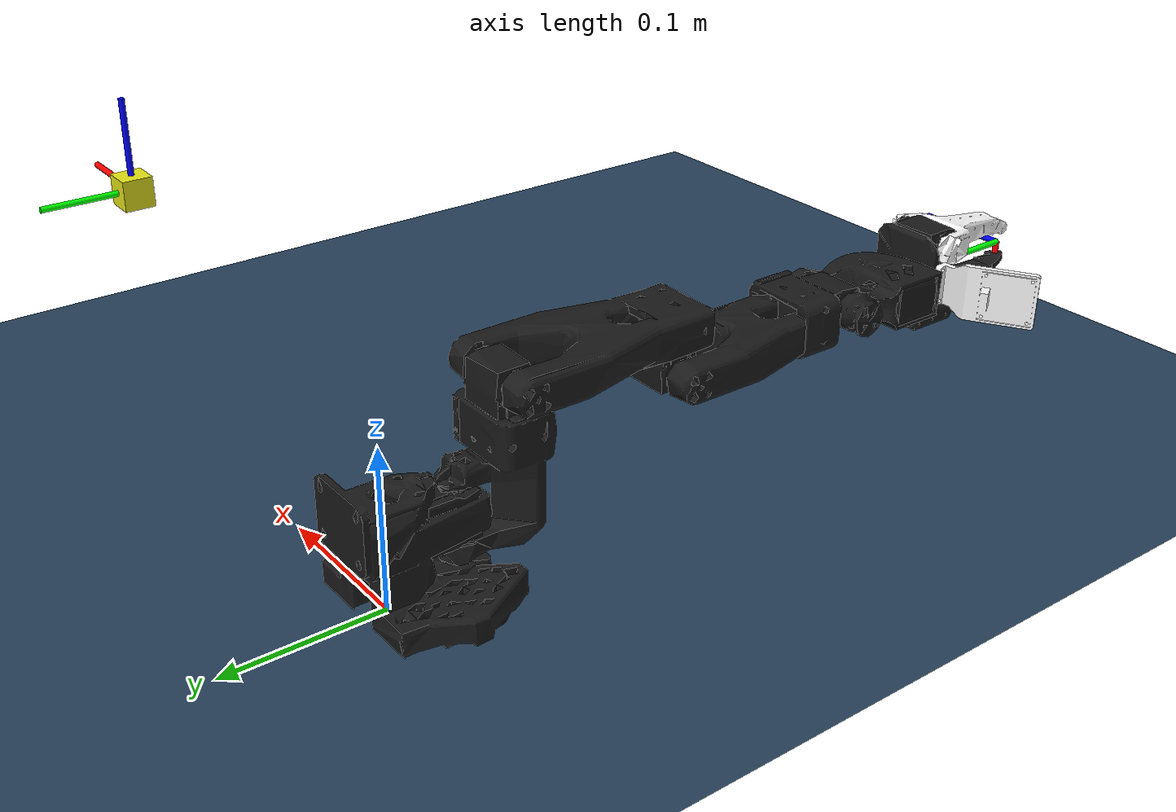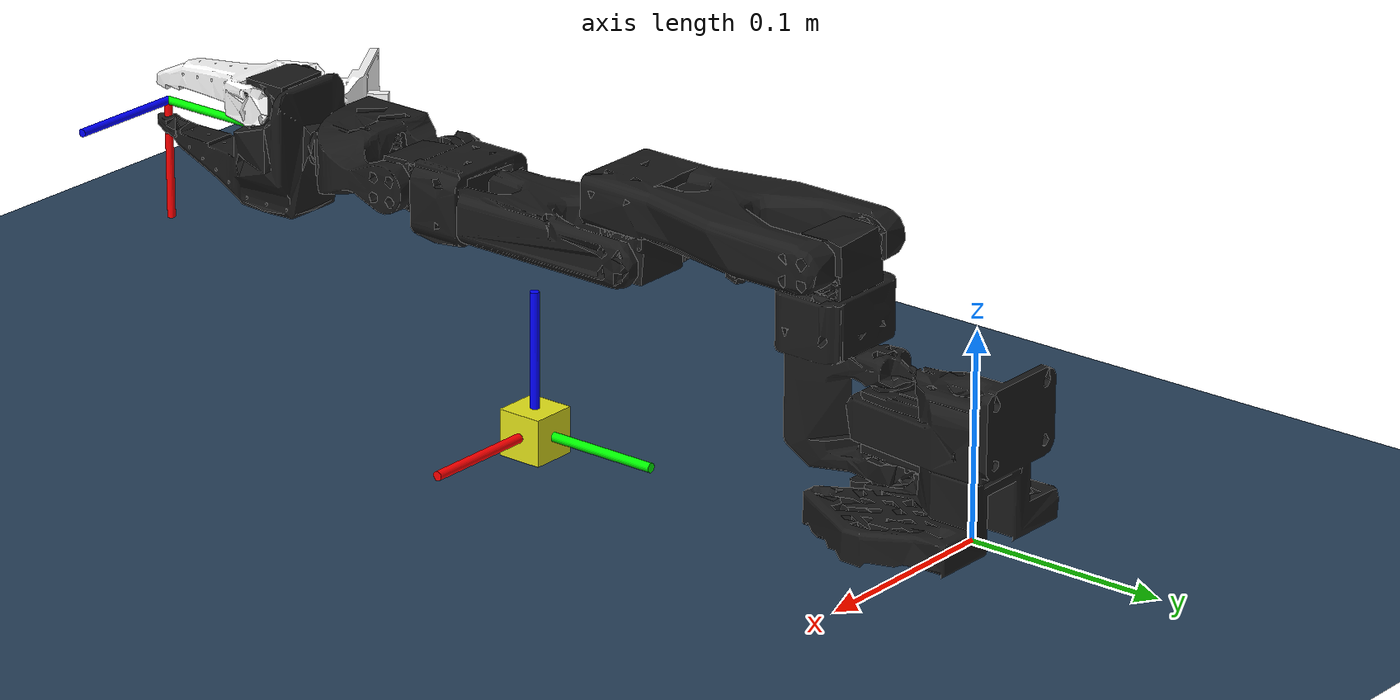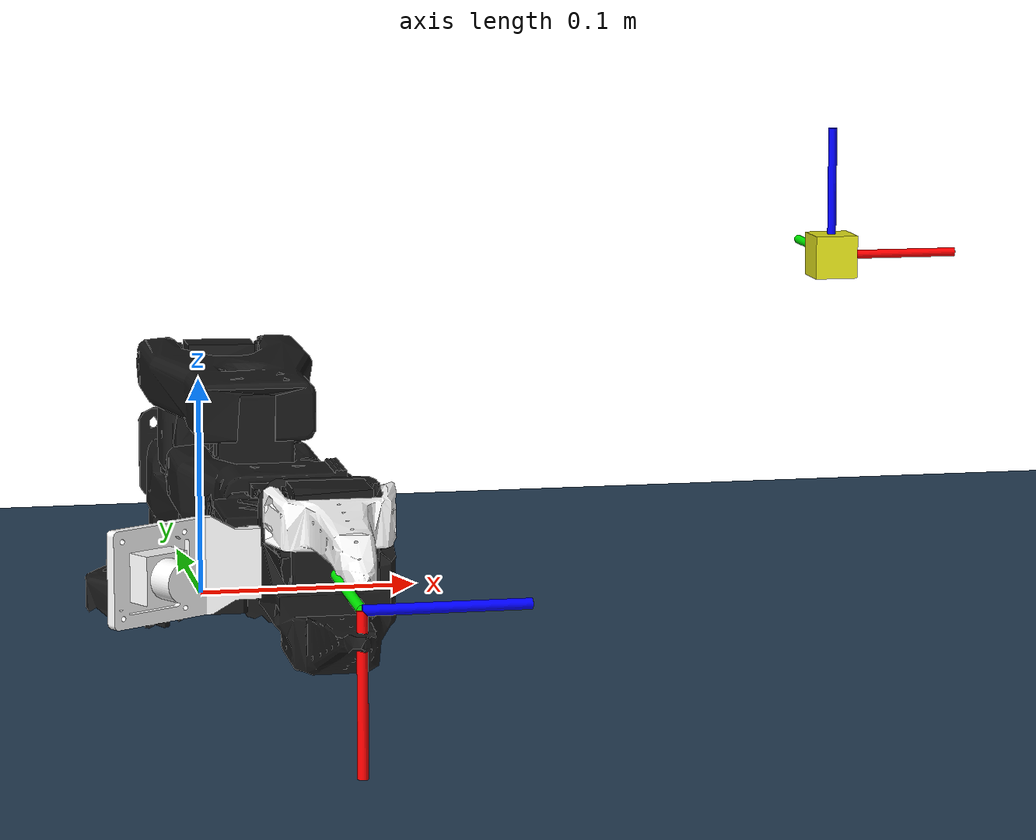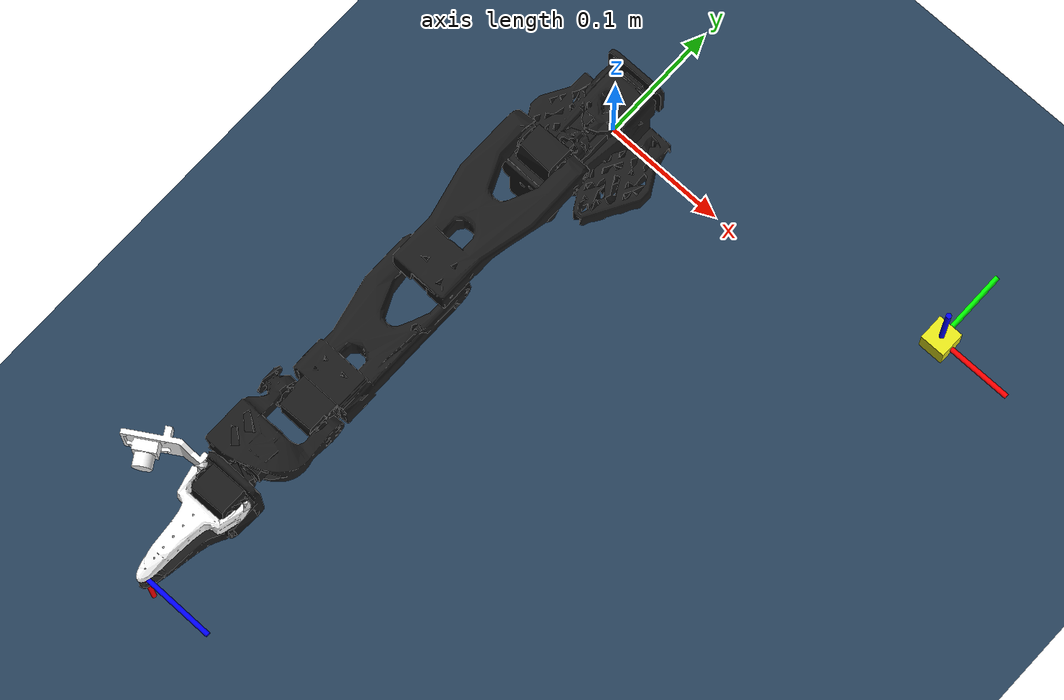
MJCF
<mujoco model="LeKiwi scene">
  <include file="../scene/scene.xml"/>

  <worldbody>
    <body name="cube" pos="0.3 0 0.15" euler="0 0 0">
      <freejoint/>
      <geom name="cube" type="box" size="0.01 0.01 0.01" rgba="0.9 0.9 0.1 0.9"/>
      <geom type="cylinder" size="0.002 0.03" rgba="1 0 0 1" pos="0.03 0 0.0" euler="0 1.57079 0" contype="0" conaffinity="0" mass="0"/>
      <geom type="cylinder" size="0.002 0.03" rgba="0 1 0 1" pos="0 0.03 0.0" euler="1.57079 0 0" contype="0" conaffinity="0" mass="0"/>
      <geom type="cylinder" size="0.002 0.03" rgba="0 0 1 1" pos="0 0 0.03" euler="0 0 0" contype="0" conaffinity="0" mass="0"/>
      <inertial mass="0.001" pos="0 0 0" diaginertia="0.001 0.001 0.001"/>
    </body>
  </worldbody>
</mujoco>

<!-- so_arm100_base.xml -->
<mujoco model="so_arm100">
  <compiler angle="radian" meshdir="../assets/"/>

  <option cone="elliptic" impratio="10"/>

  <asset>
    <material name="white" rgba="1 1 1 1"/>
    <material name="black" rgba="0.1 0.1 0.1 1"/>

    <mesh name="Base" file="Base.stl"/>
    <mesh name="Base_Motor" file="Base_Motor.stl"/>
    <mesh name="Rotation_Pitch" file="Rotation_Pitch.stl"/>
    <mesh name="Rotation_Pitch_Motor" file="Rotation_Pitch_Motor.stl"/>
    <mesh name="Upper_Arm" file="Upper_Arm.stl"/>
    <mesh name="Upper_Arm_Motor" file="Upper_Arm_Motor.stl"/>
    <mesh name="Lower_Arm" file="Lower_Arm.stl"/>
    <mesh name="Lower_Arm_Motor" file="Lower_Arm_Motor.stl"/>
    <mesh name="Wrist_Pitch_Roll" file="Wrist_Pitch_Roll.stl"/>
    <mesh name="Wrist_Pitch_Roll_Motor" file="Wrist_Pitch_Roll_Motor.stl"/>
    <mesh name="Fixed_Jaw" file="Fixed_Jaw.stl"/>
    <mesh name="Fixed_Jaw_Motor" file="Fixed_Jaw_Motor.stl"/>
    <mesh name="Fixed_Jaw_Collision_1" file="Fixed_Jaw_Collision_1.stl"/>
    <mesh name="Fixed_Jaw_Collision_2" file="Fixed_Jaw_Collision_2.stl"/>
    <mesh name="Moving_Jaw" file="Moving_Jaw.stl"/>
    <mesh name="Moving_Jaw_Collision_1" file="Moving_Jaw_Collision_1.stl"/>
    <mesh name="Moving_Jaw_Collision_2" file="Moving_Jaw_Collision_2.stl"/>
    <mesh name="Moving_Jaw_Collision_3" file="Moving_Jaw_Collision_3.stl"/>
    <mesh name="Wrist_Camera" file="Wrist_Camera.stl"/>
  </asset>

  <default>
    <default class="so_arm100">
      <joint frictionloss="0.1" armature="0.1"/>
      <position kp="50" dampratio="1" forcerange="-3.5 3.5"/>
      <default class="Rotation">
        <joint axis="0 1 0" range="-1.92 1.92"/>
      </default>
      <default class="Pitch">
        <joint axis="1 0 0" range="-3.32 0.174"/>
      </default>
      <default class="Elbow">
        <joint axis="1 0 0" range="-0.174 3.14"/>
      </default>
      <default class="Wrist_Pitch">
        <joint axis="1 0 0" range="-1.66 1.66"/>
      </default>
      <default class="Wrist_Roll">
        <joint axis="0 1 0" range="-2.79 2.79"/>
      </default>
      <default class="Jaw">
        <joint axis="0 0 1" range="-0.174 1.75"/>
      </default>
      <default class="visual">
        <geom type="mesh" contype="0" conaffinity="0" density="0" group="2" material="black"/>
        <default class="motor_visual">
          <geom material="black"/>
        </default>
      </default>
      <default class="collision">
        <geom group="3" type="mesh" material="white"/>
        <default class="finger_collision">
          <geom type="box" solimp="0 1 0.001 0.02 3" solref="0.001 1" friction="2 0.05 0.05"/>
        </default>
      </default>
    </default>
  </default>

  <worldbody>
    <body name="Base" childclass="so_arm100">
      <geom type="mesh" mesh="Base" class="visual"/>
      <geom type="mesh" mesh="Base_Motor" class="motor_visual"/>
      <geom type="mesh" mesh="Base" class="collision"/>
      <site name="site1" rgba="1 0 0 1" size="0.002"/>
      <body name="Rotation_Pitch" pos="0 -0.0452 0.0165" quat="0.707105 0.707108 0 0">
        <inertial pos="-9.07886e-05 0.0590972 0.031089" quat="0.363978 0.441169 -0.623108 0.533504" mass="0.119226" diaginertia="5.94278e-05 5.89975e-05 3.13712e-05"/>
        <joint name="Rotation" class="Rotation"/>
        <geom type="mesh" mesh="Rotation_Pitch" class="visual"/>
        <geom type="mesh" mesh="Rotation_Pitch_Motor" class="motor_visual"/>
        <geom type="mesh" mesh="Rotation_Pitch" class="collision"/>
        <site name="site2" rgba="1 0 0 1" size="0.002"/>
        <body name="Upper_Arm" pos="0 0.1025 0.0306" euler="1.57079 0 0">
          <inertial pos="-1.72052e-05 0.0701802 0.00310545" quat="0.50104 0.498994 -0.493562 0.50632" mass="0.162409" diaginertia="0.000213312 0.000167164 7.01522e-05"/>
          <joint name="Pitch" class="Pitch"/>
          <geom type="mesh" mesh="Upper_Arm" class="visual"/>
          <geom type="mesh" mesh="Upper_Arm_Motor" class="motor_visual"/>
          <geom type="mesh" mesh="Upper_Arm" class="collision"/>
          <site name="site3" rgba="1 0 0 1" size="0.002"/>
          <body name="Lower_Arm" pos="0 0.11257 0.028" euler="-1.57079 0 0">
            <inertial pos="-0.00339604 0.00137796 0.0768007" quat="0.701995 0.0787996 0.0645626 0.704859" mass="0.147968" diaginertia="0.000138803 0.000107748 4.84242e-05"/>
            <joint name="Elbow" class="Elbow"/>
            <geom type="mesh" mesh="Lower_Arm" class="visual"/>
            <geom type="mesh" mesh="Lower_Arm_Motor" class="motor_visual"/>
            <geom type="mesh" mesh="Lower_Arm" class="collision"/>
            <site name="site4" rgba="1 0 0 1" size="0.002"/>
            <body name="Wrist_Pitch_Roll" pos="0 0.0052 0.1349" euler="-1.57079 0 0">
              <inertial pos="-0.00852653 -0.0352279 -2.34622e-05" quat="-0.0522806 0.705235 0.0549524 0.704905" mass="0.0661321" diaginertia="3.45403e-05 2.39041e-05 1.94704e-05"/>
              <joint name="Wrist_Pitch" class="Wrist_Pitch"/>
              <geom type="mesh" mesh="Wrist_Pitch_Roll" class="visual"/>
              <geom type="mesh" mesh="Wrist_Pitch_Roll_Motor" class="motor_visual"/>
              <geom type="mesh" mesh="Wrist_Pitch_Roll" class="collision"/>
              <site name="site5" rgba="1 0 0 1" size="0.002"/>
              <body name="Fixed_Jaw" pos="0 -0.0601 0" euler="0 1.57079 0">
                <inertial pos="0.00552377 -0.0280167 0.000483583" quat="0.41836 0.620891 -0.350644 0.562599" mass="0.0929859" diaginertia="5.03136e-05 4.64098e-05 2.72961e-05"/>
                <joint name="Wrist_Roll" class="Wrist_Roll"/>
                <geom type="mesh" mesh="Fixed_Jaw" class="visual"/>
                <geom type="mesh" mesh="Fixed_Jaw_Motor" class="motor_visual"/>
                <geom type="mesh" mesh="Fixed_Jaw_Collision_1" class="collision"/>
                <geom type="mesh" mesh="Fixed_Jaw_Collision_2" class="collision"/>
                <geom class="finger_collision" name="fixed_jaw_pad_1" size="0.001 0.005 0.004" pos="0.0089 -0.1014 0"/>
                <geom class="finger_collision" name="fixed_jaw_pad_2" size="0.001 0.005 0.006" pos="0.0109 -0.0914 0"/>
                <geom class="finger_collision" name="fixed_jaw_pad_3" size="0.001 0.01 0.007" pos="0.0126 -0.0768 0"/>
                <geom class="finger_collision" name="fixed_jaw_pad_4" size="0.001 0.01 0.008" pos="0.0143 -0.0572 0"/>
                <site name="site6" rgba="1 0 0 1" size="0.002"/>
                <body name="camera" pos="-0.002 -0.047 -0.1425" euler="0.36 0 0">
                  <geom type="mesh" mesh="Wrist_Camera" rgba="1 1 1 1"/>
                  <body pos="0.00125 0.044 0.065" euler="-2.5 0 1.570795">
                    <camera name="Wrist_camera" mode="fixed" resolution="1920 1080" sensorsize="5.37 4.04" focal="2.9 2.9"/>
                  </body>
                </body>

                <site name="ee" pos="0.0 -0.10 0.00" rgba="1 0 0 0"/>
                <geom type="cylinder" group="1" size="0.002 0.03" rgba="1 0 0 1" pos="0.03 -0.10 0.0" euler="0 1.57079 0" class="visual"/>
                <geom type="cylinder" group="1" size="0.002 0.03" rgba="0 1 0 1" pos="0 -0.07 -0.0" euler="1.57079 0 0" class="visual"/>
                <geom type="cylinder" group="1" size="0.002 0.03" rgba="0 0 1 1" pos="0 -0.10 0.03" euler="0 0 0" class="visual"/>

                <body name="Moving_Jaw" pos="-0.0202 -0.0244 0" quat="1.34924e-11 -3.67321e-06 1 -3.67321e-06">
                  <inertial pos="-0.00161745 -0.0303473 0.000449646" quat="0.696562 0.716737 -0.0239844 -0.0227026" mass="0.0202444" diaginertia="1.11265e-05 8.99651e-06 2.99548e-06"/>
                  <joint name="Jaw" class="Jaw"/>
                  <geom type="mesh" mesh="Moving_Jaw" class="visual" rgba="1 1 1 1"/>
                  <geom type="mesh" mesh="Moving_Jaw_Collision_1" class="collision"/>
                  <geom type="mesh" mesh="Moving_Jaw_Collision_2" class="collision"/>
                  <geom type="mesh" mesh="Moving_Jaw_Collision_3" class="collision"/>
                  <geom class="finger_collision" name="moving_jaw_pad_1" size="0.001 0.005 0.004" pos="-0.0113 -0.077 0"/>
                  <geom class="finger_collision" name="moving_jaw_pad_2" size="0.001 0.005 0.006" pos="-0.0093 -0.067 0"/>
                  <geom class="finger_collision" name="moving_jaw_pad_3" size="0.001 0.01 0.006" pos="-0.0073 -0.055 0"/>
                  <geom class="finger_collision" name="moving_jaw_pad_4" size="0.001 0.01 0.008" pos="-0.0073 -0.035 0"/>
                </body>
              </body>
            </body>
          </body>
        </body>
      </body>
    </body>
  </worldbody>

  <actuator>
    <position class="Rotation" name="Rotation" joint="Rotation" inheritrange="1"/>
    <position class="Pitch" name="Pitch" joint="Pitch" inheritrange="1"/>
    <position class="Elbow" name="Elbow" joint="Elbow" inheritrange="1"/>
    <position class="Wrist_Pitch" name="Wrist_Pitch" joint="Wrist_Pitch" inheritrange="1"/>
    <position class="Wrist_Roll" name="Wrist_Roll" joint="Wrist_Roll" inheritrange="1"/>
    <position class="Jaw" name="Jaw" joint="Jaw" inheritrange="1"/>
  </actuator>

  <contact>
    <exclude body1="Base" body2="Rotation_Pitch"/>
  </contact>

  <sensor>
    <framepos name="eePos" objtype="site" objname="ee"/>
    <framequat name="eeQuat" objtype="site" objname="ee"/>
    <framelinvel name="eeLinVel" objtype="site" objname="ee"/>
    <frameangvel name="eeAngVel" objtype="site" objname="ee"/>
    <gyro name="eeGyro" site="ee"/>
    <accelerometer name="eeAcc" site="ee"/>
    <force name="eeForce" site="ee"/>
  </sensor>

</mujoco>

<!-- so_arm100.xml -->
<mujoco model="so_arm100">
  <include file="../urdf/so_arm100_base.xml"/>

  <keyframe>
    <key name="home" qpos="0 -1.57 1.57 1.57 -1.57 0" ctrl="0 -1.57 1.57 1.57 -1.57 0"/>
    <key name="middle" qpos="0 -1.57079 1.57079 0 0 0" ctrl="0 -1.57079 1.57079 0 0 0"/>
    <key name="zero" qpos="0 0 0 0 0 0" ctrl="0 0 0 0 0 0"/>
    <key name="rotated" qpos="-1.57079 -1.57079 1.57079 1.57079 -1.57079 1.57079" ctrl="-1.57079 -1.57079 1.57079 1.57079 -1.57079 1.57079"/>
    <key name="rest" qpos="0 -3.32 3.11 1.18 0 -0.174" ctrl="0 -3.32 3.11 1.18 0 -0.174"/>
  </keyframe>
</mujoco>

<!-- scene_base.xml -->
<mujoco model="so_arm100 scene">

  <statistic center="0 -0.2 0.1" extent="0.4"/>

  <visual>
    <headlight diffuse="0.6 0.6 0.6" ambient="0.3 0.3 0.3" specular="0 0 0"/>
    <rgba haze="0.15 0.25 0.35 1"/>
    <global azimuth="140" elevation="-30"/>
  </visual>

  <asset>
    <texture type="skybox" builtin="gradient" rgb1="0.3 0.5 0.7" rgb2="0 0 0" width="512" height="3072"/>
    <texture type="2d" name="groundplane" builtin="checker" mark="edge" rgb1="0.2 0.3 0.4" rgb2="0.1 0.2 0.3" markrgb="0.8 0.8 0.8" width="300" height="300"/>
    <material name="groundplane" texture="groundplane" texuniform="true" texrepeat="5 5" reflectance="0.2"/>
  </asset>

  <worldbody>
    <light pos="0 0 1.5" dir="0 0 -1" directional="true"/>
    <geom name="floor" size="0 0 0.05" type="plane" material="groundplane"/>
  </worldbody>
</mujoco>

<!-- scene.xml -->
<mujoco model="so_arm100 scene">

  <include file="../urdf/so_arm100.xml"/>

  <include file="../scene/scene_base.xml"/>

</mujoco>
